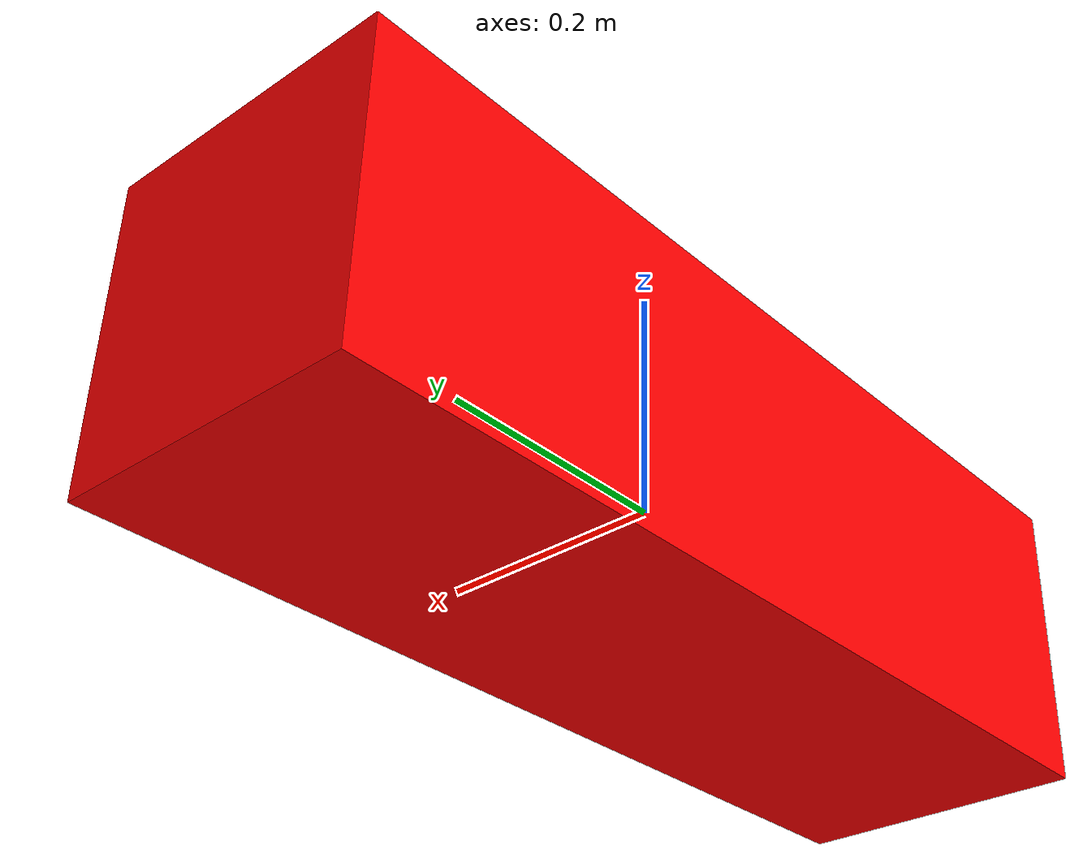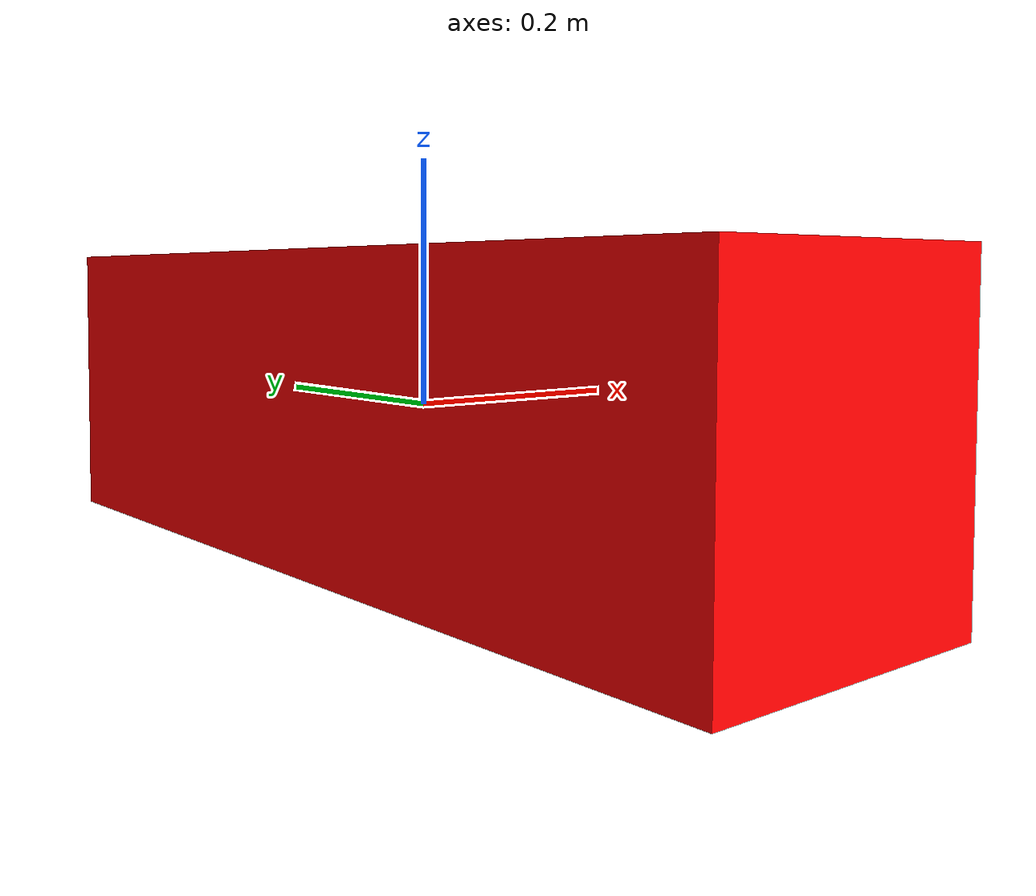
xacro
<?xml version="1.0"?>
<robot xmlns:xacro="http://ros.org/wiki/xacro" name="prism">
  <xacro:property name="prism_width" value="0.25"/>
  <xacro:property name="prism_length" value="0.8"/>
  <xacro:property name="prism_height" value="0.25"/>

  <link name="target_cube">
    <visual>
      <geometry>
        <box size="${prism_width} ${prism_length} ${prism_height}"/>
      </geometry>
      <material name="red">
        <color rgba="1 0 0 1"/>
      </material>
    </visual>
    <collision>
      <geometry>
        <box size="${prism_width} ${prism_length} ${prism_height}"/>
      </geometry>
    </collision>
    <inertial>
      <mass value="1.0"/>
      <origin xyz="0 0 0" rpy="0 0 0"/>
      <inertia ixx="0.01" ixy="0.0" ixz="0.0" iyy="0.01" iyz="0.0" izz="0.01"/>
    </inertial>
  </link>

  <!-- Gazebo properties for the cube -->
  <gazebo reference="target_cube">
    <visual>
      <material>
        <ambient>1 0 0 1</ambient>
        <diffuse>1 0 0 1</diffuse>
        <specular>0.5 0.5 0.5 1</specular>
      </material>
    </visual>
    <collision>
      <surface>
        <friction>
          <ode>
            <mu>0.8</mu>
            <mu2>0.8</mu2>
          </ode>
        </friction>
      </surface>
    </collision>
  </gazebo>

</robot>
